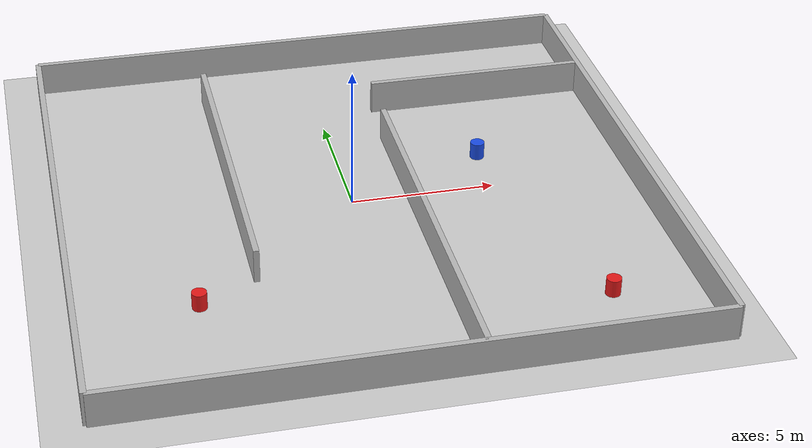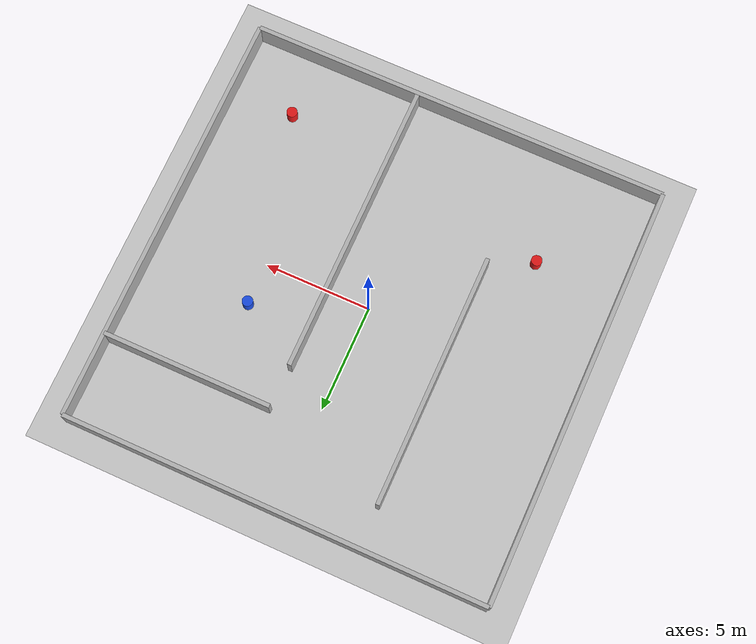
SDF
<?xml version="1.0"?>
<sdf version="1.6">
  <world name="usar_building">
    <include><uri>model://sun</uri></include>
    <include><uri>model://ground_plane</uri></include>

    <physics type="ode">
      <real_time_update_rate>1000</real_time_update_rate>
    </physics>

    <model name="walls">
      <static>true</static>
      <pose>0 0 0 0 0 0</pose>
      <link name="link">
        <collision name="n"><pose>0 10 0.6 0 0 0</pose><geometry><box><size>20 0.2 1.2</size></box></geometry></collision>
        <visual name="nv"><pose>0 10 0.6 0 0 0</pose><geometry><box><size>20 0.2 1.2</size></box></geometry></visual>
        <collision name="s"><pose>0 -10 0.6 0 0 0</pose><geometry><box><size>20 0.2 1.2</size></box></geometry></collision>
        <visual name="sv"><pose>0 -10 0.6 0 0 0</pose><geometry><box><size>20 0.2 1.2</size></box></geometry></visual>
        <collision name="e"><pose>10 0 0.6 0 0 0</pose><geometry><box><size>0.2 20 1.2</size></box></geometry></collision>
        <visual name="ev"><pose>10 0 0.6 0 0 0</pose><geometry><box><size>0.2 20 1.2</size></box></geometry></visual>
        <collision name="w"><pose>-10 0 0.6 1.5708 0 0</pose><geometry><box><size>0.2 20 1.2</size></box></geometry></collision>
        <visual name="wv"><pose>-10 0 0.6 0 1.5708 1.5708</pose><geometry><box><size>1.2 0.2 20</size></box></geometry></visual>

        <collision name="i1"><pose>-4 2 0.6 0 0 0</pose><geometry><box><size>0.2 12 1.2</size></box></geometry></collision>
        <visual name="i1v"><pose>-4 2 0.6 0 0 0</pose><geometry><box><size>0.2 12 1.2</size></box></geometry></visual>

        <collision name="i2"><pose>2 -3 0.6 0 0 0</pose><geometry><box><size>0.2 14 1.2</size></box></geometry></collision>
        <visual name="i2v"><pose>2 -3 0.6 0 0 0</pose><geometry><box><size>0.2 14 1.2</size></box></geometry></visual>

        <collision name="i3"><pose>6 6 0.6 0 0 0</pose><geometry><box><size>8 0.2 1.2</size></box></geometry></collision>
        <visual name="i3v"><pose>6 6 0.6 0 0 0</pose><geometry><box><size>8 0.2 1.2</size></box></geometry></visual>
      </link>
    </model>

    <model name="event_hazard_1">
      <static>true</static>
      <pose>-6 -5 0.3 0 0 0</pose>
      <link name="link"><visual name="v"><geometry><cylinder><radius>0.25</radius><length>0.6</length></cylinder></geometry>
        <material><ambient>0.9 0.1 0.1 1</ambient><diffuse>0.9 0.1 0.1 1</diffuse></material></visual></link>
    </model>
    <model name="event_victim_1">
      <static>true</static>
      <pose>5 2 0.3 0 0 0</pose>
      <link name="link"><visual name="v"><geometry><cylinder><radius>0.25</radius><length>0.6</length></cylinder></geometry>
        <material><ambient>0.1 0.3 0.9 1</ambient><diffuse>0.1 0.3 0.9 1</diffuse></material></visual></link>
    </model>
    <model name="event_hazard_2">
      <static>true</static>
      <pose>7 -7 0.3 0 0 0</pose>
      <link name="link"><visual name="v"><geometry><cylinder><radius>0.25</radius><length>0.6</length></cylinder></geometry>
        <material><ambient>0.9 0.1 0.1 1</ambient><diffuse>0.9 0.1 0.1 1</diffuse></material></visual></link>
    </model>
  </world>
</sdf>
